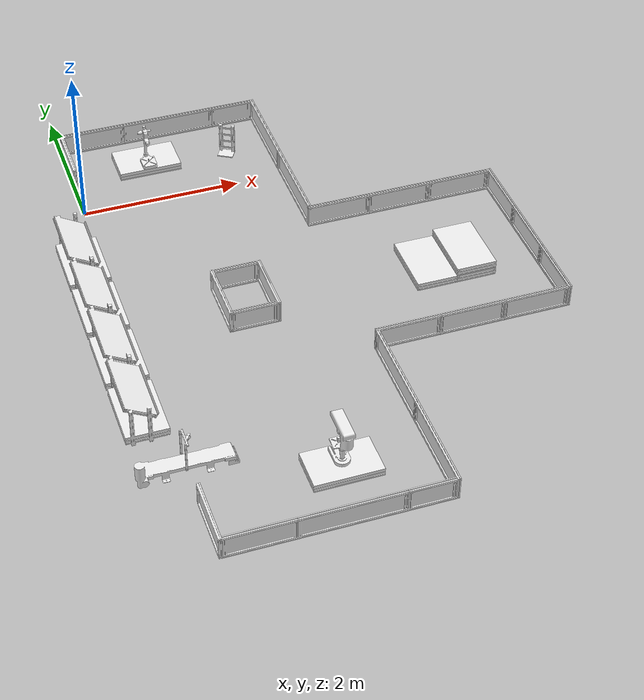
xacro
<?xml version="1.0"?>
<robot name="lisboa_model" xmlns:xacro="http://www.ros.org/wiki/xacro">

  <!-- Included URDF/XACRO Files -->
  <xacro:include filename="$(find rockin_gazebo)/ros/urdf/model_template.urdf.xacro" />
  <xacro:include filename="$(find rockin_gazebo)/ros/urdf/common.urdf.xacro" />
  <!-- reference frame-->

  <link name="${origin}"/>
  <xacro:macro name="lisboa-world" params="name">
    <!-- side Walls -->
    <model_template object_model_path="${wall_80}" mass_of_object="${wall_80_mass}" com_of_object="${com_wall_80}"
      type_of_object="fixed"
      link_name="wall_1" parent="${origin}"
      trans_x="${walls_width}" trans_y="${entrance_width/2}" trans_z="0"
      rot_x="0" rot_y="0" rot_z="0"/>
    <model_template object_model_path="${wall_80}" mass_of_object="${wall_80_mass}" com_of_object="${com_wall_80}"
      type_of_object="fixed"
      link_name="wall_2" parent="wall_1"
      trans_x="0" trans_y="${wall_80_len-walls_width}" trans_z="0"
      rot_x="0" rot_y="0" rot_z="-${M_PI_2}"/>
    <model_template object_model_path="${wall_120}" mass_of_object="${wall_120_mass}" com_of_object="${com_wall_120}"
      type_of_object="fixed"
      link_name="wall_3" parent="wall_2"
      trans_x="0" trans_y="${wall_80_len}" trans_z="0"
      rot_x="0" rot_y="0" rot_z="0"/>
    <model_template object_model_path="${wall_54}" mass_of_object="${wall_54_mass}" com_of_object="${com_wall_54}"
      type_of_object="fixed"
      link_name="wall_4" parent="wall_3"
      trans_x="0" trans_y="${wall_120_len}" trans_z="0"
      rot_x="0" rot_y="0" rot_z="0"/>
    <model_template object_model_path="${wall_120}" mass_of_object="${wall_120_mass}" com_of_object="${com_wall_120}"
      type_of_object="fixed"
      link_name="wall_5" parent="wall_4"
      trans_x="-${walls_width}" trans_y="${wall_54_len}" trans_z="0"
      rot_x="0" rot_y="0" rot_z="-${M_PI_2}"/>
    <model_template object_model_path="${wall_120}" mass_of_object="${wall_120_mass}" com_of_object="${com_wall_120}"
      type_of_object="fixed"
      link_name="wall_6" parent="wall_5"
      trans_x="0" trans_y="${wall_120_len}" trans_z="0"
      rot_x="0" rot_y="0" rot_z="0"/>
    <model_template object_model_path="${wall_80}" mass_of_object="${wall_80_mass}" com_of_object="${com_wall_80}"
      type_of_object="fixed"
      link_name="wall_7" parent="wall_6"
      trans_x="0" trans_y="${wall_120_len+walls_width}" trans_z="0"
      rot_x="0" rot_y="0" rot_z="${M_PI_2}"/>
    <model_template object_model_path="${wall_80}" mass_of_object="${wall_80_mass}" com_of_object="${com_wall_80}"
      type_of_object="fixed"
      link_name="wall_8" parent="wall_7"
      trans_x="0" trans_y="${wall_80_len}" trans_z="0"
      rot_x="0" rot_y="0" rot_z="0"/>
    <model_template object_model_path="${wall_80}" mass_of_object="${wall_80_mass}" com_of_object="${com_wall_80}"
      type_of_object="fixed"
      link_name="wall_9" parent="wall_8"
      trans_x="0" trans_y="${wall_80_len}" trans_z="0"
      rot_x="0" rot_y="0" rot_z="0"/>
    <model_template object_model_path="${wall_80}" mass_of_object="${wall_80_mass}" com_of_object="${com_wall_80}"
      type_of_object="fixed"
      link_name="wall_10" parent="wall_9"
      trans_x="-${walls_width}" trans_y="${wall_80_len}" trans_z="0"
      rot_x="0" rot_y="0" rot_z="-${M_PI_2}"/>
    <model_template object_model_path="${wall_80}" mass_of_object="${wall_80_mass}" com_of_object="${com_wall_80}"
      type_of_object="fixed"
      link_name="wall_11" parent="wall_10"
      trans_x="0" trans_y="${wall_80_len}" trans_z="0"
      rot_x="0" rot_y="0" rot_z="0"/>
    <model_template object_model_path="${wall_80}" mass_of_object="${wall_80_mass}" com_of_object="${com_wall_80}"
      type_of_object="fixed"
      link_name="wall_12" parent="wall_11"
      trans_x="0" trans_y="${wall_80_len}" trans_z="0"
      rot_x="0" rot_y="0" rot_z="0"/>
    <model_template object_model_path="${wall_80}" mass_of_object="${wall_80_mass}" com_of_object="${com_wall_80}"
      type_of_object="fixed"
      link_name="wall_13" parent="wall_12"
      trans_x="0" trans_y="${wall_80_len-walls_width}" trans_z="0"
      rot_x="0" rot_y="0" rot_z="-${M_PI_2}"/>
    <model_template object_model_path="${wall_80}" mass_of_object="${wall_80_mass}" com_of_object="${com_wall_80}"
      type_of_object="fixed"
      link_name="wall_14" parent="wall_13"
      trans_x="0" trans_y="${wall_80_len}" trans_z="0"
      rot_x="0" rot_y="0" rot_z="0"/>
    <model_template object_model_path="${wall_80}" mass_of_object="${wall_80_mass}" com_of_object="${com_wall_80}"
      type_of_object="fixed"
      link_name="wall_15" parent="wall_14"
      trans_x="0" trans_y="${wall_80_len}" trans_z="0"
      rot_x="0" rot_y="0" rot_z="0"/>
    <model_template object_model_path="${wall_120}" mass_of_object="${wall_120_mass}" com_of_object="${com_wall_120}"
      type_of_object="fixed"
      link_name="wall_16" parent="wall_15"
      trans_x="-${walls_width}" trans_y="${wall_80_len}" trans_z="0"
      rot_x="0" rot_y="0" rot_z="${M_PI_2}"/>
    <model_template object_model_path="${wall_120}" mass_of_object="${wall_120_mass}" com_of_object="${com_wall_120}"
      type_of_object="fixed"
      link_name="wall_17" parent="wall_16"
      trans_x="0" trans_y="${wall_120_len}" trans_z="0"
      rot_x="0" rot_y="0" rot_z="0"/>
    <model_template object_model_path="${wall_54}" mass_of_object="${wall_54_mass}" com_of_object="${com_wall_54}"
      type_of_object="fixed"
      link_name="wall_18" parent="wall_17"
      trans_x="0" trans_y="${wall_120_len-walls_width}" trans_z="0"
      rot_x="0" rot_y="0" rot_z="-${M_PI_2}"/>
    <model_template object_model_path="${wall_120}" mass_of_object="${wall_120_mass}" com_of_object="${com_wall_120}"
      type_of_object="fixed"
      link_name="wall_19" parent="wall_18"
      trans_x="0" trans_y="${wall_54_len}" trans_z="0"
      rot_x="0" rot_y="0" rot_z="0"/>
    <model_template object_model_path="${wall_80}" mass_of_object="${wall_80_mass}" com_of_object="${com_wall_80}"
      type_of_object="fixed"
      link_name="wall_20" parent="wall_19"
      trans_x="0" trans_y="${wall_120_len}" trans_z="0"
      rot_x="0" rot_y="0" rot_z="0"/>
    <model_template object_model_path="${wall_80}" mass_of_object="${wall_80_mass}" com_of_object="${com_wall_80}"
      type_of_object="fixed"
      link_name="wall_21" parent="wall_20"
      trans_x="-${walls_width}" trans_y="${wall_80_len}" trans_z="0"
      rot_x="0" rot_y="0" rot_z="-${M_PI_2}"/>

    <!-- shelfs -->
    <model_template object_model_path="${shelf}" mass_of_object="${shelf_mass}" com_of_object="${com_shelf}"
      type_of_object="fixed"
      link_name="shelf_1" parent="${origin}"
      trans_x="-${platform_width}" trans_y="-${shelf_length+entrance_width/2}"
      trans_z="0" rot_x="0" rot_y="0" rot_z="0"/>
    <model_template object_model_path="${shelf}" mass_of_object="${shelf_mass}" com_of_object="${com_shelf}"
      type_of_object="fixed"
      link_name="shelf_2" parent="shelf_1"
      trans_x="0" trans_y="-${shelf_length}" trans_z="0"
      rot_x="0" rot_y="0" rot_z="0"/>
    <model_template object_model_path="${shelf}" mass_of_object="${shelf_mass}" com_of_object="${com_shelf}"
      type_of_object="fixed"
      link_name="shelf_3" parent="shelf_2"
      trans_x="0" trans_y="-${shelf_length}" trans_z="0"
      rot_x="0" rot_y="0" rot_z="0"/>
    <model_template object_model_path="${shelf}" mass_of_object="${shelf_mass}" com_of_object="${com_shelf}"
      type_of_object="fixed"
      link_name="shelf_4" parent="shelf_3"
      trans_x="0" trans_y="-${shelf_length}" trans_z="0"
      rot_x="0" rot_y="0" rot_z="0"/>

    <!-- platforms -->
    <model_template object_model_path="${platform}" mass_of_object="${platform_mass}" com_of_object="${com_platform}"
      type_of_object="fixed"
      link_name="platform_5" parent="${origin}"
      trans_x="${wall_120_len/2}" trans_y="${platform_width+(entrance_width/2)}" trans_z="0"
      rot_x="0" rot_y="0" rot_z="-${M_PI_2}"/>
    <model_template object_model_path="${platform}" mass_of_object="${platform_mass}" com_of_object="${com_platform}"
      type_of_object="fixed"
      link_name="platform_7" parent="${origin}"
      trans_x="${(2*wall_80_len)+wall_54_len+wall_120_len+(2*walls_width)}"
      trans_y="-${entrance_width+(2*wall_80_len+walls_width)}" trans_z="0"
      rot_x="0" rot_y="0" rot_z="0"/>
    <model_template object_model_path="${platform}" mass_of_object="${platform_mass}" com_of_object="${com_platform}"
      type_of_object="fixed"
      link_name="platform_6_1" parent="platform_7"
      trans_x="${platform_width}" trans_y="0" trans_z="0"
      rot_x="0" rot_y="0" rot_z="0"/>
    <model_template object_model_path="${platform}" mass_of_object="${platform_mass}" com_of_object="${com_platform}"
      type_of_object="fixed"
      link_name="platform_6_2" parent="platform_6_1"
      trans_x="0" trans_y="0" trans_z="${platform_height}"
      rot_x="0" rot_y="0" rot_z="0"/>

    <model_template object_model_path="${platform}" mass_of_object="${platform_mass}" com_of_object="${com_platform}"
      type_of_object="fixed"
      link_name="platform_8" parent="${origin}"
      trans_x="${wall_120_len+wall_80_len-platform_len}"
      trans_y="-${(1.5*entrance_width)+(shelf_length*4)-(platform_width/2)}" trans_z="0"
      rot_x="0" rot_y="0" rot_z="-${M_PI_2}"/>

    <!-- rack -->
    <model_template object_model_path="${rack}" mass_of_object="${aid_tray_rack_mass}" com_of_object="${com_rack}"
      type_of_object="fixed"
      link_name="rack" parent="${origin}"
      trans_x="${wall_80_len+wall_120_len}" trans_y="${(platform_width/2)+(entrance_width/2)}" trans_z="0"
      rot_x="0" rot_y="0" rot_z="${M_PI+(M_PI_2/1.5)}"/>

    <!-- conveyor belt -->
    <model_template object_model_path="${conveyor_belt}" mass_of_object="${conveyor_belt_mass}" com_of_object="${com_conveyor_belt}"
      type_of_object="fixed"
      link_name="conveyor_belt" parent="${origin}"
      trans_x="${conveyor_belt_length/2}" trans_y="-${entrance_width+(4*shelf_length)}" trans_z="0"
      rot_x="0" rot_y="0" rot_z="${M_PI_2}"/>
    <model_template object_model_path="${quality_control_camera}" mass_of_object="${quality_control_camera_mass}" com_of_object="${com_quality_control_camera}"
      type_of_object="fixed"
      link_name="quality_control_camera" parent="conveyor_belt"
      trans_x="-${quality_control_camera_width/2}" trans_y="${conveyor_belt_length/2}" trans_z="${conveyor_belt_height-0.04}"
      rot_x="0" rot_y="0" rot_z="-${M_PI_2}"/>
    <model_template object_model_path="${exit_ramp}" mass_of_object="${exit_ramp_mass}" com_of_object="${com_exit_ramp}"
      type_of_object="fixed"
      link_name="exit_ramp" parent="conveyor_belt"
      trans_x="0" trans_y="-${exit_ramp_breadth/4}" trans_z="0"
      rot_x="0" rot_y="0" rot_z="0"/>

    <!-- force fitting machine -->
    <model_template object_model_path="${force_fitting_machine}" mass_of_object="${force_fitting_machine_mass}"  com_of_object="${com_force_fitting}"
      type_of_object="fixed"
      link_name="force_fitting_machine" parent="platform_5"
      trans_x="${platform_width/2}" trans_y="${platform_len/2}" trans_z="${platform_height}"
      rot_x="0" rot_y="0" rot_z="0"/>

    <!-- drill machine -->
    <model_template object_model_path="${drill_machine}" mass_of_object="${drill_machine_mass}" com_of_object="${com_drill_machine}"
      type_of_object="fixed"
      link_name="drill_machine" parent="platform_8"
      trans_x="${platform_width/2}" trans_y="${platform_len/2}" trans_z="${platform_height}"
      rot_x="0" rot_y="0" rot_z="${M_PI}"/>

    <!-- centered walls -->
    <model_template object_model_path="${wall_80}" mass_of_object="${wall_80_mass}" com_of_object="${com_wall_80}"
      type_of_object="fixed"
      link_name="wall_middle_1" parent="${origin}"
      trans_x="${wall_80_len-(wall_54_len/2)+(wall_120_len/2)}"
      trans_y="-${(entrance_width+walls_width)+(2*wall_80_len)}" trans_z="0"
      rot_x="0" rot_y="0" rot_z="0"/>
    <model_template object_model_path="${wall_54}" mass_of_object="${wall_54_mass}" com_of_object="${com_wall_54}"
      type_of_object="fixed"
      link_name="wall_middle_2" parent="wall_middle_1"
      trans_x="0" trans_y="0" trans_z="0"
      rot_x="0" rot_y="0" rot_z="-${M_PI_2}"/>
    <model_template object_model_path="${wall_80}" mass_of_object="${wall_80_mass}" com_of_object="${com_wall_80}"
      type_of_object="fixed"
      link_name="wall_middle_3" parent="wall_middle_1"
      trans_x="${wall_54_len+walls_width}" trans_y="0" trans_z="0"
      rot_x="0" rot_y="0" rot_z="0"/>
    <model_template object_model_path="${wall_54}" mass_of_object="${wall_54_mass}" com_of_object="${com_wall_54}"
      type_of_object="fixed"
      link_name="wall_middle_4" parent="wall_middle_2"
      trans_x="-${wall_80_len-walls_width}" trans_y="0" trans_z="0"
      rot_x="0" rot_y="0" rot_z="0"/>
  </xacro:macro>

  <xacro:lisboa-world name="lisboa-world" />
</robot>

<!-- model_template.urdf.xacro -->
<robot name="model_template"
      xmlns:xi="http://www.w3.org/2001/XInclude"
      xmlns:gazebo="http://playerstage.sourceforge.net/gazebo/xmlschema/#gz"
      xmlns:model="http://playerstage.sourceforge.net/gazebo/xmlschema/#model"
      xmlns:sensor="http://playerstage.sourceforge.net/gazebo/xmlschema/#sensor"
      xmlns:body="http://playerstage.sourceforge.net/gazebo/xmlschema/#body"
      xmlns:geom="http://playerstage.sourceforge.net/gazebo/xmlschema/#geom"
      xmlns:joint="http://playerstage.sourceforge.net/gazebo/xmlschema/#joint"
      xmlns:interface="http://playerstage.sourceforge.net/gazebo/xmlschema/#interface"
      xmlns:rendering="http://playerstage.sourceforge.net/gazebo/xmlschema/#rendering"
      xmlns:renderable="http://playerstage.sourceforge.net/gazebo/xmlschema/#renderable"
      xmlns:controller="http://playerstage.sourceforge.net/gazebo/xmlschema/#controller"
      xmlns:physics="http://playerstage.sourceforge.net/gazebo/xmlschema/#physics"
      xmlns:xacro="http://www.ros.org/wiki/xacro">

  <xacro:macro name="model_template" params="object_model_path mass_of_object com_of_object type_of_object
    link_name parent trans_x trans_y trans_z rot_x rot_y rot_z">
          <link name="${link_name}">
          <inertial>
            <mass value="${mass_of_object}" />
            <origin xyz="${com_of_object}" />
            <inertia  ixx="1.0" ixy="0.0"  ixz="0.0"  iyy="1.0"  iyz="0.0"  izz="1.0" />
          </inertial>
          <visual>
            <!-- visual origin is defined w.r.t. link local coordinate system -->
            <origin xyz="0 0 0" rpy="0 0 0" />
            <geometry>
              <mesh filename="${object_model_path}" scale="0.001 0.001 0.001"/>
            </geometry>
          </visual>
          <collision>
            <!-- collision origin is defined w.r.t. link local coordinate system -->
            <origin xyz="0 0 0" rpy="0 0 0" />
            <geometry>
              <mesh filename="${object_model_path}" scale="0.001 0.001 0.001"/>
            </geometry>
          </collision>
          </link>

          <joint name="${link_name}_joint" type="${type_of_object}">
              <parent link="${parent}"/>
              <child link="${link_name}"/>
              <origin xyz="${trans_x} ${trans_y} ${trans_z}" rpy="${rot_x} ${rot_y} ${rot_z}"/>
                <limit effort="100" velocity="100"/>
                <joint_properties damping="0.0" friction="0.0"/>
          </joint>

          <gazebo reference="${link_name}">
              <maxContacts>20</maxContacts>
              <material>Gazebo/White</material>
              <selfCollide>true</selfCollide>
          </gazebo>
  </xacro:macro>
</robot>

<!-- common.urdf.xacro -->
<robot name="common" xmlns:xacro="http://www.ros.org/wiki/xacro">
 <!-- PROPERTY LIST -->
  <!--All units in m-kg-s-radians unit system -->
  <property name="M_PI" value="3.1415926535897931" />
  <property name="M_PI_2" value="1.570796327" />

  <!-- dimesions of objects -->
  <property name="walls_width" value="0.04" />
  <property name="wall_120_len" value="1.2" />
  <property name="wall_80_len" value="0.8" />
  <property name="wall_54_len" value="0.54" />
  <property name="platform_len" value="0.8" />
  <property name="platform_width" value="0.5" />
  <property name="platform_height" value="0.099" />
  <property name="shelf_length" value="0.88" />
  <property name="conveyor_belt_length" value="1.12" />
  <property name="conveyor_belt_height" value="0.11" />
  <property name="quality_control_camera_width" value="0.250" />
  <property name="exit_ramp_breadth" value="0.125" />
  <property name="entrance_width" value="1.04" />
  <property name="rack_width" value="0.2" />
  <property name="em_01_aid_tray_width" value="0.085" />
  <property name="ax_06b_cover_plate_length" value="0.049" />
  <property name="ax_06b_cover_plate_breadth" value="0.045" />
  <property name="ax_06b_cover_plate_width" value="0.003" />

  <property name="ax_03_axis_diameter" value="0.027" />
  <property name="ax_09_motor_with_gearbox_diameter" value="0.042" />

  <!-- reference frame name -->
  <property name="origin" value="world" />

  <!--path to models -->
  <property name="wall_54" value="package://rockin_gazebo/ros/models/arena/wall_540x300x40.dae" />
  <property name="wall_80" value="package://rockin_gazebo/ros/models/arena/wall_800x300x40.dae" />
  <property name="wall_120" value="package://rockin_gazebo/ros/models/arena/wall_1200x300x40.dae" />
  <property name="platform" value="package://rockin_gazebo/ros/models/arena/platform_800x500x99.dae" />
  <property name="rack" value="package://rockin_gazebo/ros/models/arena/aid_tray_rack.dae" />
  <property name="shelf" value="package://rockin_gazebo/ros/models/arena/shelf.dae" />
  <property name="exit_ramp" value="package://rockin_gazebo/ros/models/devices/exit_ramp.dae" />
  <property name="conveyor_belt" value="package://rockin_gazebo/ros/models/devices/conveyor_belt.dae" />
  <property name="force_fitting_machine" value="package://rockin_gazebo/ros/models/devices/force_fitting_machine.dae" />
  <property name="drill_machine" value="package://rockin_gazebo/ros/models/devices/drilling_machine_wit_aid.dae" />
  <property name="quality_control_camera" value="package://rockin_gazebo/ros/models/devices/quality_control_camera_with_mount.dae" />

  <property name="ax_01b_bearing_box" value="package://rockin_gazebo/ros/models/objects/AX-01b_bearing_box.dae" />
  <property name="ax_01_bearing_box" value="package://rockin_gazebo/ros/models/objects/AX-01_bearing_box.dae" />
  <property name="ax_02_bearing" value="package://rockin_gazebo/ros/models/objects/AX-02_bearing.dae" />
  <property name="ax_03_axis" value="package://rockin_gazebo/ros/models/objects/AX-03_axis.dae" />
  <property name="ax_04_shaft_nut" value="package://rockin_gazebo/ros/models/objects/AX-04_shaft_nut.dae" />
  <property name="ax_05_distance_tube" value="package://rockin_gazebo/ros/models/objects/AX-05_distance_tube.dae" />
  <property name="ax_06b_cover_plate_no_hole" value="package://rockin_gazebo/ros/models/objects/AX-06b_cover_plate_no_hole.dae" />
  <property name="ax_06_cover_plate_defect" value="package://rockin_gazebo/ros/models/objects/AX-06_cover_plate_defect.dae" />
  <property name="ax_07_cover_plate_machined" value="package://rockin_gazebo/ros/models/objects/AX-07_cover_plate_machined.dae" />
  <property name="ax_09_motor_with_gearbox" value="package://rockin_gazebo/ros/models/objects/AX-09_motor_with_gearbox.dae" />
  <property name="ax_10_screw1_coverplate_motor" value="package://rockin_gazebo/ros/models/objects/AX-10_screw1_coverplate_motor.dae" />
  <property name="ax_11_screw2_coverplate_motor" value="package://rockin_gazebo/ros/models/objects/AX-11_screw2_coverplate_motor.dae" />
  <property name="em_01_aid_tray" value="package://rockin_gazebo/ros/models/objects/EM-01_aid_tray.dae" />
  <property name="em_01b_aid_tray_inlay" value="package://rockin_gazebo/ros/models/objects/EM-01b_aid_tray_inlay.dae" />
  <property name="em_02_coverplates_box" value="package://rockin_gazebo/ros/models/objects/EM-02_coverplates_box.dae" />
  <property name="er_02_container" value="package://rockin_gazebo/ros/models/objects/ER-02_container.dae" />

  <!-- weights(Kg) -->
  <property name="wall_120_mass" value="5.0" />
  <property name="wall_80_mass" value="3.5" />
  <property name="wall_54_mass" value="3.0" />
  <property name="platform_mass" value="11.5" />
  <property name="shelf_mass" value="21.0" />
  <property name="aid_tray_rack_mass" value="3.0" />
  <property name="conveyor_belt_mass" value="20.0" />
  <property name="quality_control_camera_mass" value="1.0"/>
  <property name="exit_ramp_mass" value="0.523"/>
  <property name="drill_machine_mass" value="15.5" />
  <property name="force_fitting_machine_mass" value="6.0" />

  <property name="ax_01b_bearing_box_mass" value="0.054" />
  <property name="ax_01_bearing_box_mass" value="0.101" />
  <property name="ax_02_bearing_mass" value="0.044" />
  <property name="ax_03_axis_mass" value="0.043" />
  <property name="ax_04_shaft_nut_mass" value="0.014" />
  <property name="ax_05_distance_tube_mass" value="0.004" />
  <property name="ax_06b_cover_plate_no_hole_mass" value="0.015" />
  <property name="ax_06_cover_plate_defect_mass" value="0.015" />
  <property name="ax_07_cover_plate_machined_mass" value="0.015" />
  <property name="ax_09_motor_with_gearbox_mass" value="0.022" />
  <property name="ax_10_screw1_coverplate_motor_mass" value="1.0" />
  <property name="ax_11_screw2_coverplate_motor_mass" value="1.0" />
  <property name="em_01_aid_tray_mass" value="0.048" />
  <property name="em_01b_aid_tray_inlay_mass" value="0.005" />
  <property name="em_02_coverplates_box_mass" value="0.075" />
  <property name="er_02_container_mass" value="0.088" />

  <!-- center of masses -->
  <property name="com_wall_54" value="-0.020 0.270 0.150"/>
  <property name="com_wall_80" value="-0.020 0.400 0.150"/>
  <property name="com_wall_120" value="-0.020 0.600 0.150"/>
  <property name="com_shelf" value="0.225 0.400 0.222"/>
  <property name="com_platform" value="0.250 0.401 0.064"/>
  <property name="com_rack" value="0.0354 0.1 0.1783"/>
  <property name="com_exit_ramp" value="-0.00011 0.034 0.0272"/>
  <property name="com_conveyor_belt" value="-0.0234 0.608 0.100"/>
  <property name="com_quality_control_camera" value="0.026 0.124 0.275"/>
  <property name="com_force_fitting" value="0.079 -0.0016 0.166"/>
  <property name="com_drill_machine" value="0.036 -0.00536 0.307"/>

  <property name="com_ax_01b_bearing_box" value="0.0185 0.025 0.0115" />
  <property name="com_ax_01_bearing_box" value="0.021 0.025 0.013" />
  <property name="com_ax_02_bearing" value="0.0065 0 0" />
  <property name="com_ax_03_axis" value="0.0404 0 0" />
  <property name="com_ax_04_shaft_nut" value="-0.0036 0 0" />
  <property name="com_ax_05_distance_tube" value="0 0 0.005" />
  <property name="com_ax_06b_cover_plate_no_hole" value="0.022 0.024 0.0015" />
  <property name="com_ax_06_cover_plate_defect" value="0.022 0.024 0.0015" />
  <property name="com_ax_07_cover_plate_machined" value="0.022 0.024 0.0015" />
  <property name="com_ax_09_motor_with_gearbox" value="0.0363 0.00056 0" />
  <property name="com_ax_10_screw1_coverplate_motor" value="0.004 0 0" />
  <property name="com_ax_11_screw2_coverplate_motor" value="0 0.00354 0" />
  <property name="com_em_01_aid_tray" value="0.031 0.058 0.011" />
  <property name="com_em_01b_aid_tray_inlay" value="0 0.0068 0.003" />
  <property name="com_em_02_coverplates_box" value="0 0.011 0.0135" />
  <property name="com_er_02_container" value="-0.088 0.0685 0.029" />
</robot>
